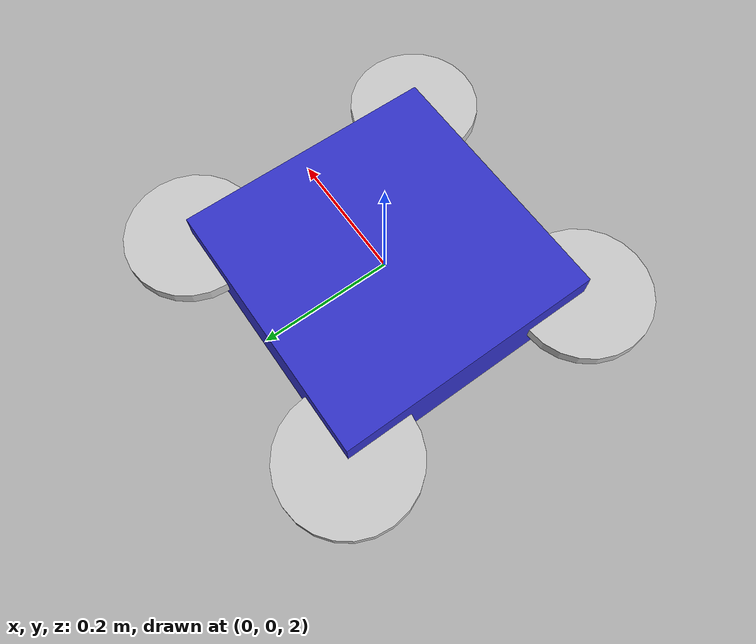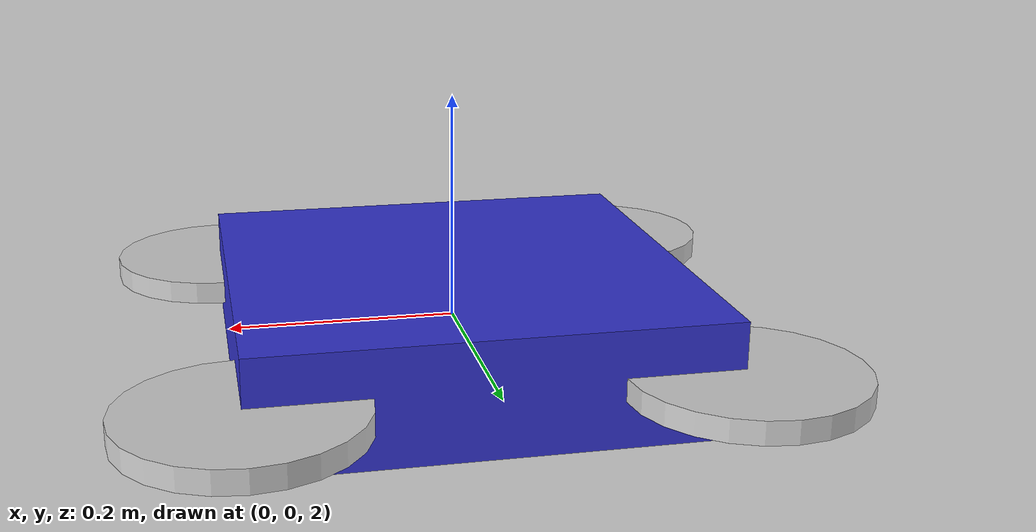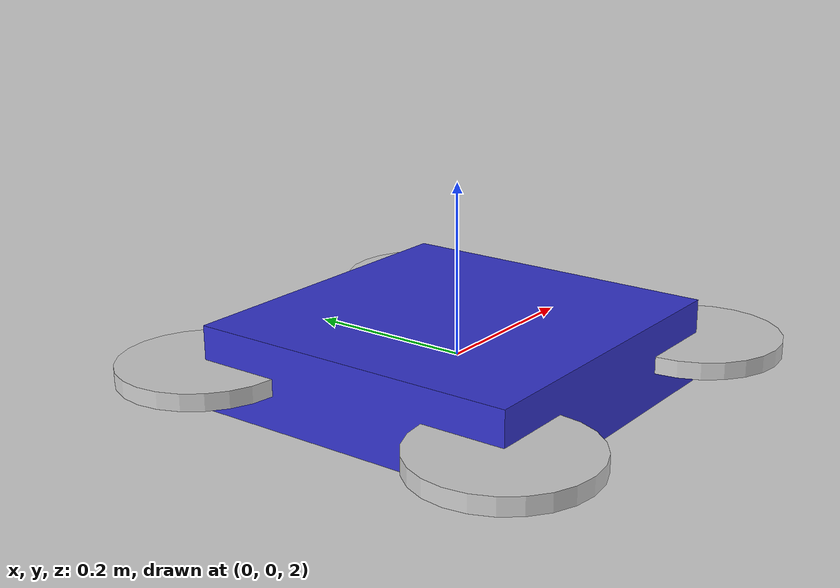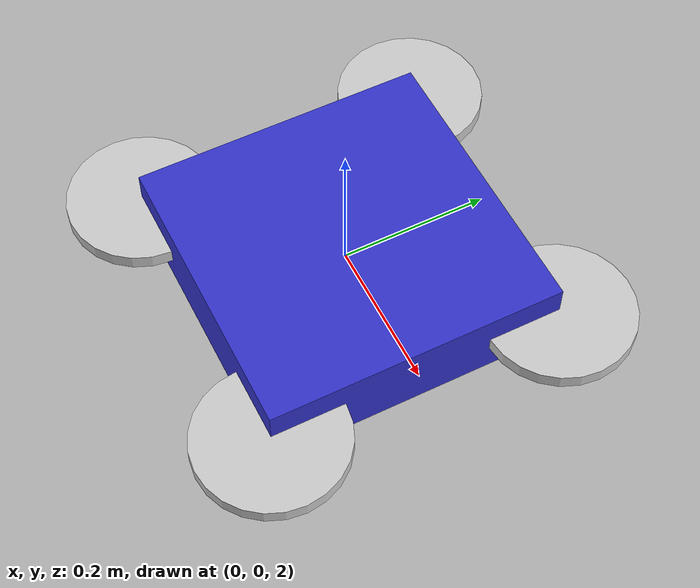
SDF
<?xml version='1.0'?>
<sdf version='1.8'>
  <world name='autonomous_drone_world'>
    <!-- Physics settings -->
    <physics name='1ms' type='ignored'>
      <max_step_size>0.001</max_step_size>
      <real_time_factor>1</real_time_factor>
      <real_time_update_rate>1000</real_time_update_rate>
    </physics>

    <!-- Gravity -->
    <gravity>0 0 -9.81</gravity>

    <!-- Lighting -->
    <light name='sun' type='directional'>
      <cast_shadows>true</cast_shadows>
      <pose>0 0 10 0 0 0</pose>
      <diffuse>0.8 0.8 0.8 1</diffuse>
      <specular>0.2 0.2 0.2 1</specular>
      <attenuation>
        <range>1000</range>
        <constant>0.9</constant>
        <linear>0.01</linear>
        <quadratic>0.001</quadratic>
      </attenuation>
      <direction>-0.5 0.1 -0.9</direction>
    </light>

    <!-- Ground plane -->
    <model name='ground_plane'>
      <static>true</static>
      <link name='link'>
        <collision name='collision'>
          <geometry>
            <plane>
              <normal>0 0 1</normal>
              <size>100 100</size>
            </plane>
          </geometry>
        </collision>
        <visual name='visual'>
          <geometry>
            <plane>
              <normal>0 0 1</normal>
              <size>100 100</size>
            </plane>
          </geometry>
          <material>
            <ambient>0.8 0.8 0.8 1</ambient>
            <diffuse>0.8 0.8 0.8 1</diffuse>
          </material>
        </visual>
      </link>
    </model>

    <!-- Required plugins -->
    <plugin name='gz::sim::systems::SceneBroadcaster' filename='libgz-sim-scene-broadcaster-system.so'/>
    <plugin name='gz::sim::systems::Sensors' filename='libgz-sim-sensors-system.so'/>
    <plugin name='gz::sim::systems::Physics' filename='libgz-sim-physics-system.so'/>
    <plugin name='gz::sim::systems::Imu' filename='libgz-sim-imu-system.so'/>
    <plugin name='gz::sim::systems::UserCommands' filename='libgz-sim-user-commands-system.so'/>
    <plugin name='gz::sim::systems::ApplyLinkWrench' filename='libgz-sim-apply-link-wrench-system.so'/>

    <!-- Autonomous Drone Model -->
    <model name='autonomous_drone'>
      <pose>0 0 2 0 0 0</pose>
      <static>false</static>

      <!-- Main body -->
      <link name='base_link'>
        <inertial>
          <mass>1.5</mass>
          <inertia>
            <ixx>0.029125</ixx>
            <iyy>0.029125</iyy>
            <izz>0.055225</izz>
          </inertia>
        </inertial>

        <collision name='collision'>
          <geometry>
            <box>
              <size>0.4 0.4 0.1</size>
            </box>
          </geometry>
        </collision>

        <visual name='visual'>
          <geometry>
            <box>
              <size>0.4 0.4 0.1</size>
            </box>
          </geometry>
          <material>
            <ambient>0.2 0.2 0.8 1</ambient>
            <diffuse>0.2 0.2 0.8 1</diffuse>
            <specular>0.1 0.1 0.1 1</specular>
          </material>
        </visual>

        <!-- IMU Sensor -->
        <sensor name='imu_sensor' type='imu'>
          <always_on>1</always_on>
          <update_rate>250</update_rate>
          <imu>
            <angular_velocity>
              <x>
                <noise type='gaussian'>
                  <mean>0.0</mean>
                  <stddev>2e-4</stddev>
                  <bias_mean>0.0000075</bias_mean>
                  <bias_stddev>0.0000008</bias_stddev>
                </noise>
              </x>
              <y>
                <noise type='gaussian'>
                  <mean>0.0</mean>
                  <stddev>2e-4</stddev>
                  <bias_mean>0.0000075</bias_mean>
                  <bias_stddev>0.0000008</bias_stddev>
                </noise>
              </y>
              <z>
                <noise type='gaussian'>
                  <mean>0.0</mean>
                  <stddev>2e-4</stddev>
                  <bias_mean>0.0000075</bias_mean>
                  <bias_stddev>0.0000008</bias_stddev>
                </noise>
              </z>
            </angular_velocity>
            <linear_acceleration>
              <x>
                <noise type='gaussian'>
                  <mean>0.0</mean>
                  <stddev>1.7e-2</stddev>
                  <bias_mean>0.1</bias_mean>
                  <bias_stddev>0.001</bias_stddev>
                </noise>
              </x>
              <y>
                <noise type='gaussian'>
                  <mean>0.0</mean>
                  <stddev>1.7e-2</stddev>
                  <bias_mean>0.1</bias_mean>
                  <bias_stddev>0.001</bias_stddev>
                </noise>
              </y>
              <z>
                <noise type='gaussian'>
                  <mean>0.0</mean>
                  <stddev>1.7e-2</stddev>
                  <bias_mean>0.1</bias_mean>
                  <bias_stddev>0.001</bias_stddev>
                </noise>
              </z>
            </linear_acceleration>
          </imu>
          <plugin filename='gz-sim-imu-system' name='gz::sim::systems::Imu'>
            <topic>/sim/imu_raw</topic>
          </plugin>
        </sensor>

        <!-- GPS Sensor -->
        <sensor name='gps_sensor' type='gps'>
          <always_on>1</always_on>
          <update_rate>10</update_rate>
          <gps>
            <position_sensing>
              <horizontal>
                <noise type='gaussian'>
                  <mean>0.0</mean>
                  <stddev>1.0</stddev>
                </noise>
              </horizontal>
              <vertical>
                <noise type='gaussian'>
                  <mean>0.0</mean>
                  <stddev>1.0</stddev>
                </noise>
              </vertical>
            </position_sensing>
            <velocity_sensing>
              <horizontal>
                <noise type='gaussian'>
                  <mean>0.0</mean>
                  <stddev>0.1</stddev>
                </noise>
              </horizontal>
              <vertical>
                <noise type='gaussian'>
                  <mean>0.0</mean>
                  <stddev>0.1</stddev>
                </noise>
              </vertical>
            </velocity_sensing>
          </gps>
          <plugin filename='gz-sim-gps-system' name='gz::sim::systems::Gps'>
            <topic>/sim/gps</topic>
          </plugin>
        </sensor>

        <!-- Barometer Sensor -->
        <sensor name='barometer_sensor' type='altimeter'>
          <always_on>1</always_on>
          <update_rate>50</update_rate>
          <altimeter>
            <vertical_position>
              <noise type='gaussian'>
                <mean>0.0</mean>
                <stddev>0.1</stddev>
              </noise>
            </vertical_position>
            <vertical_velocity>
              <noise type='gaussian'>
                <mean>0.0</mean>
                <stddev>0.1</stddev>
              </noise>
            </vertical_velocity>
          </altimeter>
          <plugin filename='gz-sim-altimeter-system' name='gz::sim::systems::Altimeter'>
            <topic>/sim/barometer</topic>
          </plugin>
        </sensor>

        <!-- Magnetometer Sensor -->
        <sensor name='magnetometer_sensor' type='magnetometer'>
          <always_on>1</always_on>
          <update_rate>50</update_rate>
          <magnetometer>
            <x>
              <noise type='gaussian'>
                <mean>0.0</mean>
                <stddev>0.01</stddev>
              </noise>
            </x>
            <y>
              <noise type='gaussian'>
                <mean>0.0</mean>
                <stddev>0.01</stddev>
              </noise>
            </y>
            <z>
              <noise type='gaussian'>
                <mean>0.0</mean>
                <stddev>0.01</stddev>
              </noise>
            </z>
          </magnetometer>
          <plugin filename='gz-sim-magnetometer-system' name='gz::sim::systems::Magnetometer'>
            <topic>/sim/magnetometer</topic>
          </plugin>
        </sensor>
      </link>

      <!-- Propeller 1 (Front Left) -->
      <link name='propeller_1'>
        <pose>0.2 0.2 0 0 0 0</pose>
        <inertial>
          <mass>0.1</mass>
          <inertia>
            <ixx>0.001</ixx>
            <iyy>0.001</iyy>
            <izz>0.001</izz>
          </inertia>
        </inertial>
        <collision name='collision'>
          <geometry>
            <cylinder>
              <radius>0.1</radius>
              <length>0.02</length>
            </cylinder>
          </geometry>
        </collision>
        <visual name='visual'>
          <geometry>
            <cylinder>
              <radius>0.1</radius>
              <length>0.02</length>
            </cylinder>
          </geometry>
          <material>
            <ambient>0.8 0.8 0.8 1</ambient>
            <diffuse>0.8 0.8 0.8 1</diffuse>
          </material>
        </visual>
      </link>

      <!-- Propeller 2 (Front Right) -->
      <link name='propeller_2'>
        <pose>-0.2 0.2 0 0 0 0</pose>
        <inertial>
          <mass>0.1</mass>
          <inertia>
            <ixx>0.001</ixx>
            <iyy>0.001</iyy>
            <izz>0.001</izz>
          </inertia>
        </inertial>
        <collision name='collision'>
          <geometry>
            <cylinder>
              <radius>0.1</radius>
              <length>0.02</length>
            </cylinder>
          </geometry>
        </collision>
        <visual name='visual'>
          <geometry>
            <cylinder>
              <radius>0.1</radius>
              <length>0.02</length>
            </cylinder>
          </geometry>
          <material>
            <ambient>0.8 0.8 0.8 1</ambient>
            <diffuse>0.8 0.8 0.8 1</diffuse>
          </material>
        </visual>
      </link>

      <!-- Propeller 3 (Rear Left) -->
      <link name='propeller_3'>
        <pose>0.2 -0.2 0 0 0 0</pose>
        <inertial>
          <mass>0.1</mass>
          <inertia>
            <ixx>0.001</ixx>
            <iyy>0.001</iyy>
            <izz>0.001</izz>
          </inertia>
        </inertial>
        <collision name='collision'>
          <geometry>
            <cylinder>
              <radius>0.1</radius>
              <length>0.02</length>
            </cylinder>
          </geometry>
        </collision>
        <visual name='visual'>
          <geometry>
            <cylinder>
              <radius>0.1</radius>
              <length>0.02</length>
            </cylinder>
          </geometry>
          <material>
            <ambient>0.8 0.8 0.8 1</ambient>
            <diffuse>0.8 0.8 0.8 1</diffuse>
          </material>
        </visual>
      </link>

      <!-- Propeller 4 (Rear Right) -->
      <link name='propeller_4'>
        <pose>-0.2 -0.2 0 0 0 0</pose>
        <inertial>
          <mass>0.1</mass>
          <inertia>
            <ixx>0.001</ixx>
            <iyy>0.001</iyy>
            <izz>0.001</izz>
          </inertia>
        </inertial>
        <collision name='collision'>
          <geometry>
            <cylinder>
              <radius>0.1</radius>
              <length>0.02</length>
            </cylinder>
          </geometry>
        </collision>
        <visual name='visual'>
          <geometry>
            <cylinder>
              <radius>0.1</radius>
              <length>0.02</length>
            </cylinder>
          </geometry>
          <material>
            <ambient>0.8 0.8 0.8 1</ambient>
            <diffuse>0.8 0.8 0.8 1</diffuse>
          </material>
        </visual>
      </link>

      <!-- Joints for propellers -->
      <joint name='propeller_1_joint' type='revolute'>
        <parent>base_link</parent>
        <child>propeller_1</child>
        <axis>
          <xyz>0 0 1</xyz>
          <limit>
            <lower>-1e16</lower>
            <upper>1e16</upper>
          </limit>
        </axis>
      </joint>

      <joint name='propeller_2_joint' type='revolute'>
        <parent>base_link</parent>
        <child>propeller_2</child>
        <axis>
          <xyz>0 0 1</xyz>
          <limit>
            <lower>-1e16</lower>
            <upper>1e16</upper>
          </limit>
        </axis>
      </joint>

      <joint name='propeller_3_joint' type='revolute'>
        <parent>base_link</parent>
        <child>propeller_3</child>
        <axis>
          <xyz>0 0 1</xyz>
          <limit>
            <lower>-1e16</lower>
            <upper>1e16</upper>
          </limit>
        </axis>
      </joint>

      <joint name='propeller_4_joint' type='revolute'>
        <parent>base_link</parent>
        <child>propeller_4</child>
        <axis>
          <xyz>0 0 1</xyz>
          <limit>
            <lower>-1e16</lower>
            <upper>1e16</upper>
          </limit>
        </axis>
      </joint>

      <!-- Flight Control Plugin -->
      <plugin filename='gz-sim-multicopter-motor-model-system' name='gz::sim::systems::MulticopterMotorModel'>
        <robotNamespace>autonomous_drone</robotNamespace>
        <jointName>propeller_1_joint</jointName>
        <linkName>propeller_1</linkName>
        <turningDirection>ccw</turningDirection>
        <timeConstantUp>0.0125</timeConstantUp>
        <timeConstantDown>0.025</timeConstantDown>
        <maxRotVelocity>1500</maxRotVelocity>
        <motorConstant>8.54858e-06</motorConstant>
        <momentConstant>0.016</momentConstant>
        <commandSubTopic>autonomous_drone/command/motor_speed</commandSubTopic>
        <motorNumber>0</motorNumber>
        <rotorDragCoefficient>0.000175</rotorDragCoefficient>
        <rollingMomentCoefficient>1e-06</rollingMomentCoefficient>
        <motorSpeedPubTopic>autonomous_drone/motor_speed/0</motorSpeedPubTopic>
        <actuatorPubTopic>autonomous_drone/actuators</actuatorPubTopic>
      </plugin>

      <plugin filename='gz-sim-multicopter-motor-model-system' name='gz::sim::systems::MulticopterMotorModel'>
        <robotNamespace>autonomous_drone</robotNamespace>
        <jointName>propeller_2_joint</jointName>
        <linkName>propeller_2</linkName>
        <turningDirection>cw</turningDirection>
        <timeConstantUp>0.0125</timeConstantUp>
        <timeConstantDown>0.025</timeConstantDown>
        <maxRotVelocity>1500</maxRotVelocity>
        <motorConstant>8.54858e-06</motorConstant>
        <momentConstant>0.016</momentConstant>
        <commandSubTopic>autonomous_drone/command/motor_speed</commandSubTopic>
        <motorNumber>1</motorNumber>
        <rotorDragCoefficient>0.000175</rotorDragCoefficient>
        <rollingMomentCoefficient>1e-06</rollingMomentCoefficient>
        <motorSpeedPubTopic>autonomous_drone/motor_speed/1</motorSpeedPubTopic>
        <actuatorPubTopic>autonomous_drone/actuators</actuatorPubTopic>
      </plugin>

      <plugin filename='gz-sim-multicopter-motor-model-system' name='gz::sim::systems::MulticopterMotorModel'>
        <robotNamespace>autonomous_drone</robotNamespace>
        <jointName>propeller_3_joint</jointName>
        <linkName>propeller_3</linkName>
        <turningDirection>ccw</turningDirection>
        <timeConstantUp>0.0125</timeConstantUp>
        <timeConstantDown>0.025</timeConstantDown>
        <maxRotVelocity>1500</maxRotVelocity>
        <motorConstant>8.54858e-06</motorConstant>
        <momentConstant>0.016</momentConstant>
        <commandSubTopic>autonomous_drone/command/motor_speed</commandSubTopic>
        <motorNumber>2</motorNumber>
        <rotorDragCoefficient>0.000175</rotorDragCoefficient>
        <rollingMomentCoefficient>1e-06</rollingMomentCoefficient>
        <motorSpeedPubTopic>autonomous_drone/motor_speed/2</motorSpeedPubTopic>
        <actuatorPubTopic>autonomous_drone/actuators</actuatorPubTopic>
      </plugin>

      <plugin filename='gz-sim-multicopter-motor-model-system' name='gz::sim::systems::MulticopterMotorModel'>
        <robotNamespace>autonomous_drone</robotNamespace>
        <jointName>propeller_4_joint</jointName>
        <linkName>propeller_4</linkName>
        <turningDirection>cw</turningDirection>
        <timeConstantUp>0.0125</timeConstantUp>
        <timeConstantDown>0.025</timeConstantDown>
        <maxRotVelocity>1500</maxRotVelocity>
        <motorConstant>8.54858e-06</motorConstant>
        <momentConstant>0.016</momentConstant>
        <commandSubTopic>autonomous_drone/command/motor_speed</commandSubTopic>
        <motorNumber>3</motorNumber>
        <rotorDragCoefficient>0.000175</rotorDragCoefficient>
        <rollingMomentCoefficient>1e-06</rollingMomentCoefficient>
        <motorSpeedPubTopic>autonomous_drone/motor_speed/3</motorSpeedPubTopic>
        <actuatorPubTopic>autonomous_drone/actuators</actuatorPubTopic>
      </plugin>

      <!-- Lift Drag Plugin -->
      <plugin filename='gz-sim-lift-drag-system' name='gz::sim::systems::LiftDrag'>
        <robotNamespace>autonomous_drone</robotNamespace>
        <linkName>base_link</linkName>
        <cp>0 0 0</cp>
        <area>0.1</area>
        <airDensity>1.2041</airDensity>
        <forward>1 0 0</forward>
        <upward>0 0 1</upward>
        <dragCoefficient>0.1</dragCoefficient>
        <liftCoefficient>0.1</liftCoefficient>
        <subTopic>autonomous_drone/command/motor_speed</subTopic>
      </plugin>
    </model>
  </world>
</sdf>
